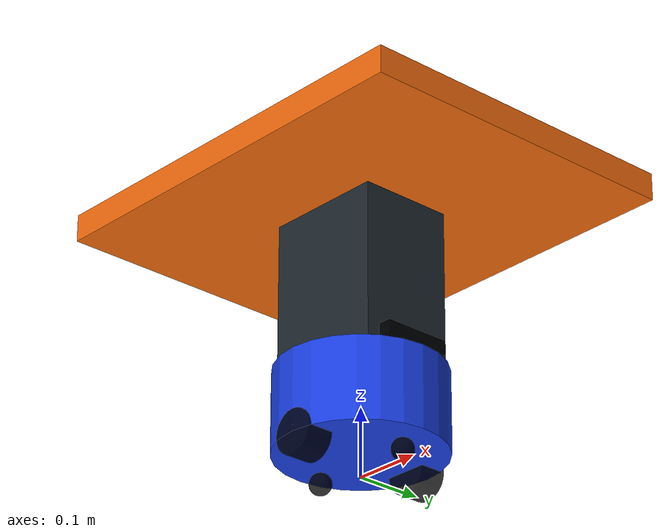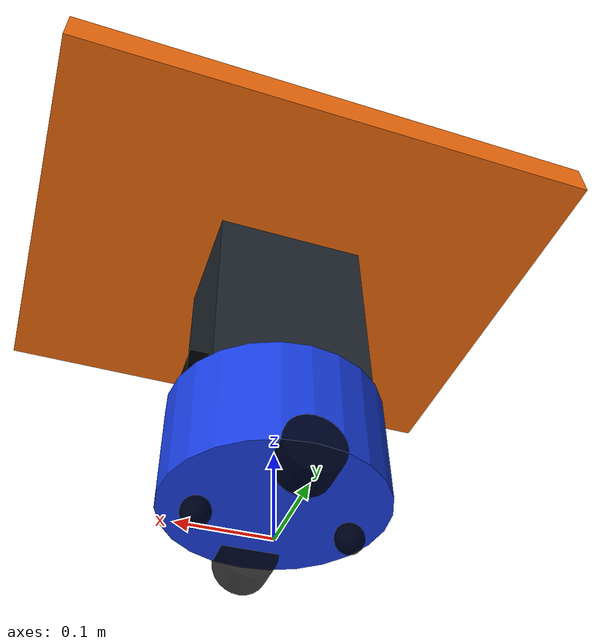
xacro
<?xml version="1.0"?>
<robot xmlns:xacro="http://www.ros.org/wiki/xacro" name="ugvcar">
    <xacro:arg name="visualize_sensor_rays" default="false" />
    <xacro:include filename="$(find ugvcar_description)/urdf/ugvcar/base.urdf.xacro" />
    <!-- 传感器组件 -->
    <xacro:include filename="$(find ugvcar_description)/urdf/ugvcar/sensor/imu.urdf.xacro" />
    <xacro:include filename="$(find ugvcar_description)/urdf/ugvcar/sensor/laser.urdf.xacro" />
    <xacro:include filename="$(find ugvcar_description)/urdf/ugvcar/sensor/camera.urdf.xacro" />
     <!-- 执行器组件 -->
    <xacro:include filename="$(find ugvcar_description)/urdf/ugvcar/actuator/wheel.urdf.xacro" />
    <xacro:include filename="$(find ugvcar_description)/urdf/ugvcar/actuator/caster.urdf.xacro" />

    <xacro:base_xacro length="0.12" radius="0.1" />
    <!-- 传感器 -->
    <xacro:imu_xacro xyz="0 0 0.02" />
    <xacro:laser_xacro xyz="0 0 0.10" />
    <xacro:camera_xacro xyz="0.10 0 0.075" />
    <!-- 执行器主动轮+从动轮 -->
    <xacro:wheel_xacro wheel_name="left" xyz="0 0.10 -0.06" />
    <xacro:wheel_xacro wheel_name="right" xyz="0 -0.10 -0.06" />
    <xacro:caster_xacro caster_name="front" xyz="0.08 0.0 -0.076" />
    <xacro:caster_xacro caster_name="back" xyz="-0.08 0.0 -0.076" />
    <!-- Gazebo 插件 -->
    <xacro:include filename="$(find ugvcar_description)/urdf/ugvcar/plugins/gazebo_control_plugin.xacro" />
    <xacro:include filename="$(find ugvcar_description)/urdf/ugvcar/ugvcar.ros2_control.xacro" />
    <xacro:ugvcar_ros2_control />
    <xacro:include filename="$(find ugvcar_description)/urdf/ugvcar/plugins/gazebo_sensor_plugin.xacro" />
    <xacro:gazebo_sensor_plugin />

    <!-- Simulation ground truth used to keep map/RViz aligned with Gazebo. -->
    <gazebo>
        <plugin name="ugvcar_ground_truth" filename="libgazebo_ros_p3d.so">
            <ros>
                <namespace>/</namespace>
                <remapping>odom:=ground_truth/odom</remapping>
            </ros>
            <body_name>base_footprint</body_name>
            <frame_name>world</frame_name>
            <update_rate>50.0</update_rate>
            <gaussian_noise>0.0</gaussian_noise>
        </plugin>
    </gazebo>
</robot>

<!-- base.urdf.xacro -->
<robot xmlns:xacro="http://www.ros.org/wiki/xacro">
   <xacro:include filename="$(find ugvcar_description)/urdf/ugvcar/common_inertia.xacro" />
    <xacro:macro name="base_xacro" params="length radius">
     <link name="base_footprint" />

        <joint name="base_joint" type="fixed">
            <parent link="base_footprint" />
            <child link="base_link" />
            <origin xyz="0.0 0.0 ${length/2.0+0.032-0.001}" rpy="0 0 0" />
        </joint>

        <link name="base_link">
            <visual name="chassis_visual">
                <origin xyz="0 0 0.0" rpy="0 0 0" />
                <geometry>
                    <cylinder length="${length}" radius="${length}" />
                </geometry>
                <material name="blue">
                    <color rgba="0.1 0.25 0.9 1.0"/>
                </material>
            </visual>
            <!-- Visual-only carrier deck keeps the validated collision footprint unchanged. -->
            <visual name="carrier_support_visual">
                <origin xyz="0 0 0.175" rpy="0 0 0" />
                <geometry>
                    <box size="0.18 0.14 0.23" />
                </geometry>
                <material name="carrier_dark">
                    <color rgba="0.12 0.15 0.18 1.0"/>
                </material>
            </visual>
            <visual name="uav_docking_deck_visual">
                <origin xyz="0 0 0.309" rpy="0 0 0" />
                <geometry>
                    <box size="0.62 0.50 0.04" />
                </geometry>
                <material name="carrier_orange">
                    <color rgba="0.95 0.42 0.05 1.0"/>
                </material>
            </visual>
            <collision>
                <origin xyz="0 0 0.0" rpy="0 0 0" />
                <geometry>
                    <cylinder length="${length}" radius="${length}" />
                </geometry>
                <material name="blue">
                    <color rgba="0.1 0.1 1.0 0.5"/>
                </material>
            </collision>
            <xacro:cylinder_inertia m="1.0" r="${radius}" h="${length}"/>
        </link>

    </xacro:macro>

</robot>

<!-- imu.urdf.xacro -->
<robot xmlns:xacro="http://www.ros.org/wiki/xacro">
   <xacro:include filename="$(find ugvcar_description)/urdf/ugvcar/common_inertia.xacro" />
    <xacro:macro name="imu_xacro" params="xyz">
        <link name="imu_link">
            <visual>
                <origin xyz="0 0 00" rpy="0 0 0" />
                <geometry>
                    <box size="0.02 0.02 0.02" />
                </geometry>
                <material name="black">
                    <color rgba="0 0 0 0.8" />
                </material>
            </visual>
            <collision>
                <origin xyz="0 0 00" rpy="0 0 0" />
                <geometry>
                    <box size="0.02 0.02 0.02" />
                </geometry>
                <material name="black">
                    <color rgba="0 0 0 0.8" />
                </material>
            </collision>
            <xacro:box_inertia m="0.01" w="0.02" d="0.02" h="0.02"/>
        </link>

        <joint name="imu_joint" type="fixed">
            <parent link="base_link" />
            <child link="imu_link" />
            <origin xyz="${xyz}" />
        </joint>
    </xacro:macro>
</robot>

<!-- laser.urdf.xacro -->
<robot xmlns:xacro="http://www.ros.org/wiki/xacro">
   <xacro:include filename="$(find ugvcar_description)/urdf/ugvcar/common_inertia.xacro" />
    <xacro:macro name="laser_xacro" params="xyz">
        <gazebo reference="laser_cylinder_link">
            <material>Gazebo/Black</material>
        </gazebo>
        <gazebo reference="laser_link">
            <material>Gazebo/Black</material>
        </gazebo>

        <!-- ============雷达支撑杆================ -->
        <link name="laser_cylinder_link">
            <visual>
                <origin xyz="0 0 0" rpy="0 0 0" />
                <geometry>
                    <cylinder length="0.10" radius="0.01" />
                </geometry>
                <material name="black">
                    <color rgba="0.0 0.0 0.0 0.8" />
                </material>
            </visual>
            <collision>
                <origin xyz="0 0 0" rpy="0 0 0" />
                <geometry>
                    <cylinder length="0.10" radius="0.01" />
                </geometry>
                <material name="black">
                    <color rgba="0.0 0.0 0.0 0.8" />
                </material>
            </collision>
            <xacro:cylinder_inertia m="0.01" r="0.01" h="0.10" />
        </link>

        <joint name="laser_cylinder_joint" type="fixed">
            <parent link="base_link" />
            <child link="laser_cylinder_link" />
            <origin xyz="${xyz}" />
        </joint>
        <!-- ============雷达================ -->
        <link name="laser_link">
            <visual>
                <origin xyz="0 0 0" rpy="0 0 0" />
                <geometry>
                    <cylinder length="0.02" radius="0.02" />
                </geometry>
                <material name="black">
                    <color rgba="0.0 0.0 0.0 0.8" />
                </material>
            </visual>
            <collision>
                <origin xyz="0 0 0" rpy="0 0 0" />
                <geometry>
                    <cylinder length="0.02" radius="0.02" />
                </geometry>
                <material name="black">
                    <color rgba="0.0 0.0 0.0 0.8" />
                </material>
            </collision>
            <xacro:cylinder_inertia m="0.03" r="0.02" h="0.02" />
        </link>

        <joint name="laser_joint" type="fixed">
            <parent link="laser_cylinder_link" />
            <child link="laser_link" />
            <origin xyz="0 0 0.05" />
        </joint>

    </xacro:macro>

</robot>

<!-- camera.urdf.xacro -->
<robot xmlns:xacro="http://www.ros.org/wiki/xacro">
   <xacro:include filename="$(find ugvcar_description)/urdf/ugvcar/common_inertia.xacro" />
    <xacro:macro name="camera_xacro" params="xyz">
        <!-- ============相机模块================ -->
        <link name="camera_link">
            <visual>
                <origin xyz="0 0 0.0" rpy="0 0 0" />
                <geometry>
                    <box size="0.02 0.10 0.02" />
                </geometry>
                <material name="black">
                    <color rgba="0.0 0.0 0.0 0.8"/>
                </material>
            </visual>
            <collision>
                <origin xyz="0 0 0.0" rpy="0 0 0" />
                <geometry>
                    <box size="0.02 0.10 0.02" />
                </geometry>
                <material name="black">
                    <color rgba="0.0 0.0 0.0 0.8"/>
                </material>
            </collision>
            <xacro:box_inertia m="0.01" w="0.02" h="0.10" d="0.02" />
        </link>
        <link name="camera_optical_link"></link>
        <joint name="camera_optical_joint" type="fixed">
            <parent link="camera_link" />
            <child link="camera_optical_link" />
            <origin xyz="0 0 0" rpy="${-pi/2} 0 ${-pi/2}" />
        </joint>

        <joint name="camera_joint" type="fixed">
            <parent link="base_link" />
            <child link="camera_link" />
            <origin xyz="${xyz}" />
        </joint>
    </xacro:macro>

</robot>

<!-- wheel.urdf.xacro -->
<robot xmlns:xacro="http://www.ros.org/wiki/xacro">
   <xacro:include filename="$(find ugvcar_description)/urdf/ugvcar/common_inertia.xacro" />
    <xacro:macro name="wheel_xacro" params="wheel_name xyz">
        <link name="${wheel_name}_wheel_link">
            <visual>
                <origin xyz="0 0 0" rpy="1.57079 0 0" />
                <geometry>
                    <cylinder length="0.04" radius="0.032" />
                </geometry>
                <material name="black">
                    <color rgba="0.0 0.0 0.0 0.8"/>
                </material>
            </visual>
            <collision>
                <origin xyz="0 0 0" rpy="1.57079 0 0" />
                <geometry>
                    <cylinder length="0.04" radius="0.032" />
                </geometry>
                <material name="black">
                    <color rgba="0.0 0.0 0.0 0.8"/>
                </material>
            </collision>
            <xacro:cylinder_inertia m="0.1" h="0.04" r="0.032"/>
        </link>
        <gazebo reference="${wheel_name}_wheel_link">
            <mu1 value="20.0" />
            <mu2 value="20.0" />
            <kp value="1000000000.0" />
            <kd value="1.0" />
        </gazebo>

        <joint name="${wheel_name}_wheel_joint" type="continuous">
            <parent link="base_link" />
            <child link="${wheel_name}_wheel_link" />
            <origin xyz="${xyz}" />
            <axis xyz="0 1 0" />
        </joint>
    </xacro:macro>
</robot>

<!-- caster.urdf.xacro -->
<robot xmlns:xacro="http://www.ros.org/wiki/xacro">
   <xacro:include filename="$(find ugvcar_description)/urdf/ugvcar/common_inertia.xacro" />
    <xacro:macro name="caster_xacro" params="caster_name xyz">
        <link name="${caster_name}_caster_link">
            <visual>
                <origin xyz="0 0 0" rpy="0 0 0" />
                <geometry>
                    <sphere radius="0.016" />
                </geometry>
                <material name="black">
                    <color rgba="0.0 0.0 0.0 0.8"/>
                </material>
            </visual>
            <collision>
                <origin xyz="0 0 0" rpy="0 0 0" />
                <geometry>
                    <sphere radius="0.016" />
                </geometry>
                <material name="black">
                    <color rgba="0.0 0.0 0.0 0.8"/>
                </material>
            </collision>
            <xacro:sphere_inertia m="0.01" r="0.016" />
        </link>
        <gazebo reference="${caster_name}_caster_link">
            <mu1 value="0.0" />
            <mu2 value="0.0" />
            <kp value="1000000000.0" />
            <kd value="1.0" />
        </gazebo>

        <joint name="${caster_name}_caster_joint" type="fixed">
            <parent link="base_link" />
            <child link="${caster_name}_caster_link" />
            <origin xyz="${xyz}" />
            <axis xyz="0 0 0" />
        </joint>

    </xacro:macro>
</robot>
